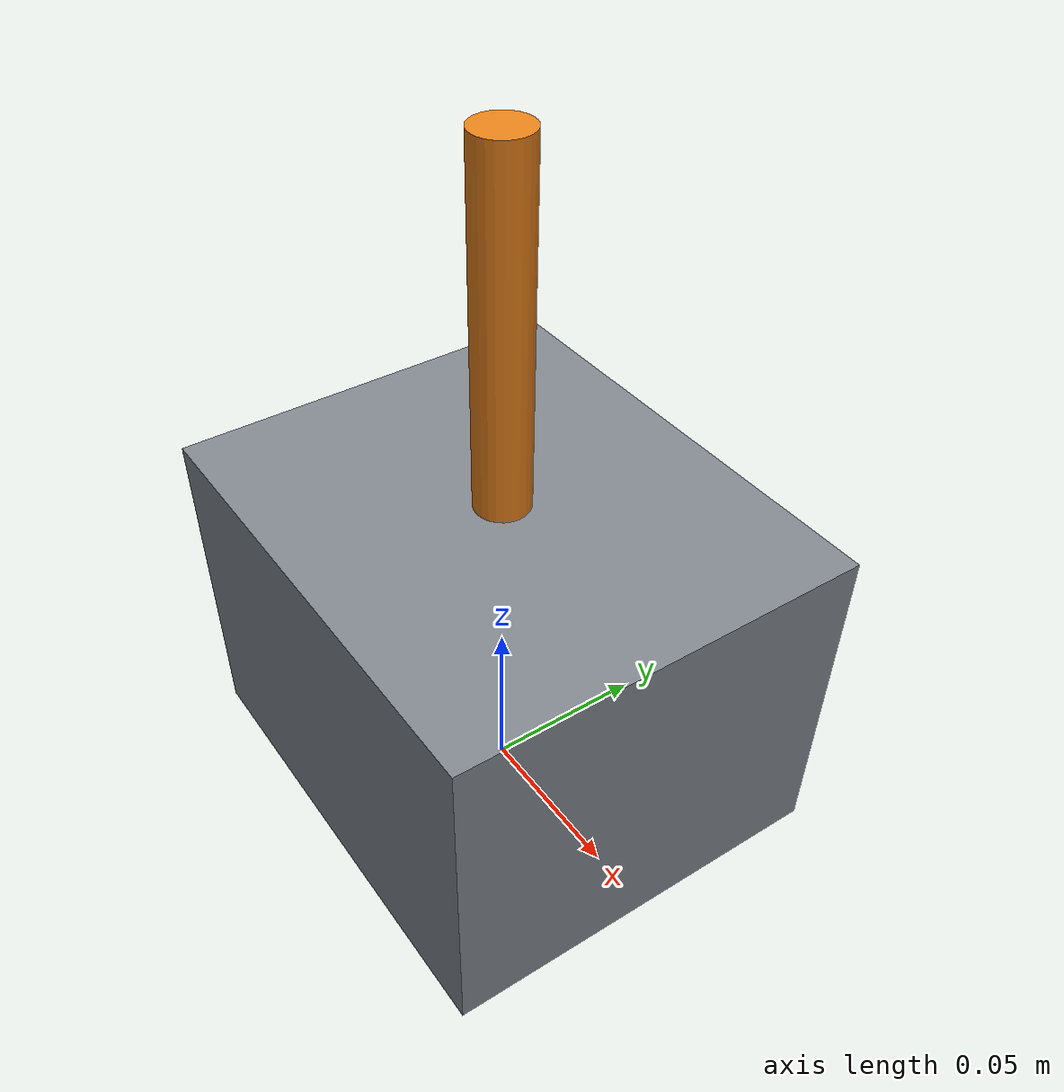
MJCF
<?xml version="1.0" encoding="utf-8"?>
<mujoco model="ampoule_sealer">
  <compiler angle="radian" autolimits="true"/>
  <default>
    <default class="body"><geom contype="1" conaffinity="1"/></default>
  </default>
  <worldbody>
    <body name="base">
      <geom type="box" size="0.07 0.06 0.05" pos="0 0 0.05" rgba="0.5 0.52 0.55 1" class="body"/>
      <geom type="box" size="0.021 0.003 0.0125" pos="-0.035 -0.054 0.07500000000000001" rgba="0.9 0.7 0.1 1" class="body"/>
      <body name="torch" pos="0 0 0.15">
        <joint name="torch_joint" type="hinge" axis="0 1 0" range="-0.8 0.8" damping="0.5" frictionloss="0.5"/>
  <geom type="cylinder" size="0.008 0.05" pos="0 0 0" rgba="0.9 0.5 0.1 1" class="body"/>
      </body>
    </body>
  </worldbody>
</mujoco>
